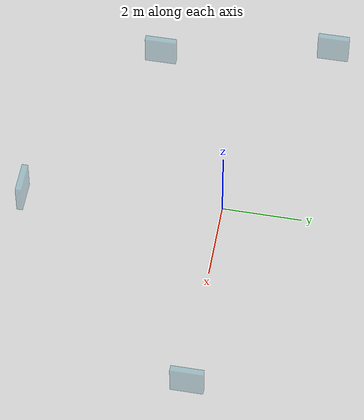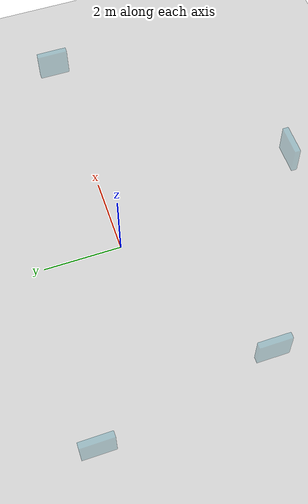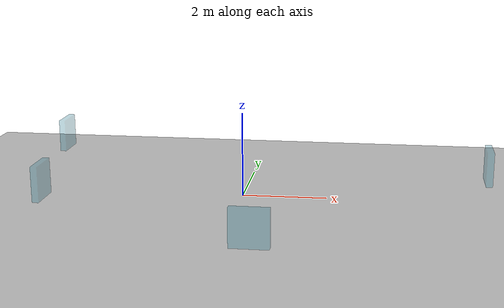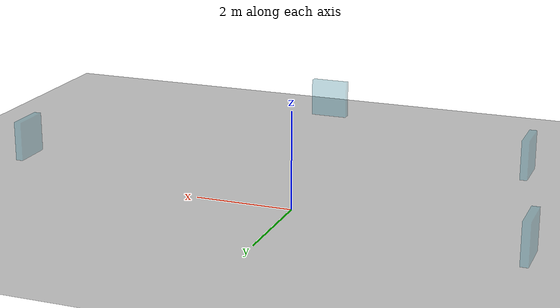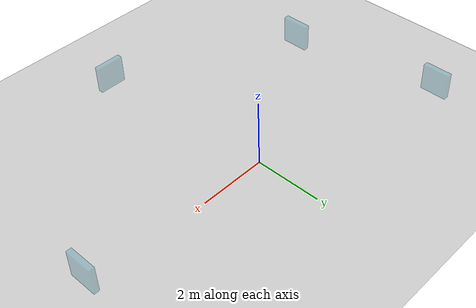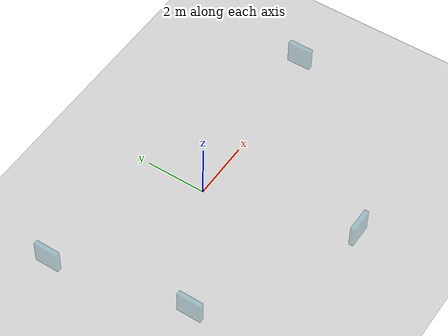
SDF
<sdf version="1.6">
 <world name="default">
  <light name="sun" type="directional">
   <pose>0 0 10 0 -0 0</pose>
   <diffuse>0.8 0.8 0.8 1</diffuse>
   <specular>0.1 0.1 0.1 1</specular>
   <attenuation>
    <range>1000</range>
    <constant>0.9</constant>
    <linear>0.01</linear>
    <quadratic>0.001</quadratic>
   </attenuation>
   <direction>-0.5 0.5 -1</direction>
  </light>
  <model name="ground_plane">
   <static>1</static>
   <link name="link">
    <collision name="collision">
     <geometry><plane><normal>0 0 1</normal><size>100 100</size></plane></geometry>
     <surface><friction><ode><mu>100</mu><mu2>50</mu2></ode></friction></surface>
    </collision>
    <visual name="visual">
     <cast_shadows>0</cast_shadows>
     <geometry><plane><normal>0 0 1</normal><size>100 100</size></plane></geometry>
     <material>
      <script><uri>file://media/materials/scripts/gazebo.material</uri><name>Gazebo/Grey</name></script>
     </material>
    </visual>
   </link>
  </model>
  <gravity>0 0 -9.8</gravity>
  <magnetic_field>6e-06 2.3e-05 -4.2e-05</magnetic_field>
  <atmosphere type="adiabatic"/>
  <physics name="default_physics" default="0" type="ode">
   <max_step_size>0.001</max_step_size>
   <real_time_factor>1</real_time_factor>
   <real_time_update_rate>1000</real_time_update_rate>
  </physics>
  <scene><ambient>0.4 0.4 0.4 1</ambient><background>0.7 0.7 0.7 1</background><shadows>1</shadows></scene>
  <spherical_coordinates>
   <surface_model>EARTH_WGS84</surface_model>
   <latitude_deg>0</latitude_deg>
   <longitude_deg>0</longitude_deg>
   <elevation>0</elevation>
   <heading_deg>0</heading_deg>
  </spherical_coordinates>
  <model name="window">
   <link name="link_2">
    <visual name="visual">
     <pose>0 0 0.9 0 -0 0</pose>
     <geometry><box><size>0.8 0.15 0.8</size></box></geometry>
     <material>
      <lighting>1</lighting>
      <ambient>0.1 0.5 0.6 1</ambient>
      <diffuse>0.1 0.5 0.6 1</diffuse>
      <specular>0.01 0.01 0.01 1</specular>
      <emissive>0 0 0 1</emissive>
     </material>
     <transparency>0.7</transparency>
    </visual>
    <collision name="collision">
     <pose>0 0 0.9 0 -0 0</pose>
     <geometry><box><size>0.8 0.15 0.8</size></box></geometry>
    </collision>
   </link>
   <static>1</static>
   <pose>-4.98923 2.04606 0 0 -0 1.5706</pose>
  </model>
  <model name="window_0">
   <link name="link_2">
    <visual name="visual">
     <pose>0 0 0.9 0 -0 0</pose>
     <geometry><box><size>0.8 0.15 0.8</size></box></geometry>
     <material>
      <lighting>1</lighting>
      <ambient>0.1 0.5 0.6 1</ambient>
      <diffuse>0.1 0.5 0.6 1</diffuse>
      <specular>0.01 0.01 0.01 1</specular>
      <emissive>0 0 0 1</emissive>
     </material>
     <transparency>0.7</transparency>
    </visual>
    <collision name="collision">
     <pose>0 0 0.9 0 -0 0</pose>
     <geometry><box><size>0.8 0.15 0.8</size></box></geometry>
    </collision>
   </link>
   <static>1</static>
   <pose>-4.12726 -2.32854 0 0 -0 1.57</pose>
  </model>
  <model name="window_1">
   <link name="link_2">
    <visual name="visual">
     <pose>0 0 0.9 0 -0 0</pose>
     <geometry><box><size>0.8 0.15 0.8</size></box></geometry>
     <material>
      <lighting>1</lighting>
      <ambient>0.1 0.5 0.6 1</ambient>
      <diffuse>0.1 0.5 0.6 1</diffuse>
      <specular>0.01 0.01 0.01 1</specular>
      <emissive>0 0 0 1</emissive>
     </material>
     <transparency>0.7</transparency>
    </visual>
    <collision name="collision">
     <pose>0 0 0.9 0 -0 0</pose>
     <geometry><box><size>0.8 0.15 0.8</size></box></geometry>
    </collision>
   </link>
   <static>1</static>
   <pose>0.875059 -4.88342 0 0 -0 0</pose>
  </model>
  <model name="window_2">
   <link name="link_2">
    <visual name="visual">
     <pose>0 0 0.9 0 -0 0</pose>
     <geometry><box><size>0.8 0.15 0.8</size></box></geometry>
     <material>
      <lighting>1</lighting>
      <ambient>0.1 0.5 0.6 1</ambient>
      <diffuse>0.1 0.5 0.6 1</diffuse>
      <specular>0.01 0.01 0.01 1</specular>
      <emissive>0 0 0 1</emissive>
     </material>
     <transparency>0.7</transparency>
    </visual>
    <collision name="collision">
     <pose>0 0 0.9 0 -0 0</pose>
     <geometry><box><size>0.8 0.15 0.8</size></box></geometry>
    </collision>
   </link>
   <static>1</static>
   <pose>5.73592 0.126978 0 0 -0 1.57</pose>
  </model>
  <model name="Floor">
   <pose>-0.862718 -0.025461 0 0 -0 0</pose>
   <scale>1 1 1</scale>
   <link name="main">
    <pose>-0.067718 0.024539 0.01 0 -0 0</pose>
    <velocity>0 0 0 0 -0 0</velocity>
    <acceleration>0 0 0 0 -0 0</acceleration>
    <wrench>0 0 0 0 -0 0</wrench>
   </link>
  </model>
  <model name="door_3d">
   <pose>-0.006583 4.95489 0 0 -0 0</pose>
   <scale>1 1 1</scale>
   <link name="link_1">
    <pose>-0.006583 4.95489 0 0 -0 0</pose>
    <velocity>0 0 0 0 -0 0</velocity>
    <acceleration>0 0 0 0 -0 0</acceleration>
    <wrench>0 0 0 0 -0 0</wrench>
   </link>
   <link name="link_2">
    <pose>-0.006583 4.95489 0 0 -0 0</pose>
    <velocity>0 0 0 0 -0 0</velocity>
    <acceleration>0 0 0 0 -0 0</acceleration>
    <wrench>0 0 0 0 -0 0</wrench>
   </link>
  </model>
  <model name="office_small">
   <pose>-0.066055 0.017641 0 0 -0 0</pose>
   <scale>1 1 1</scale>
   <link name="Wall_2">
    <pose>-0.066055 4.94264 0 0 -0 0</pose>
    <velocity>0 0 0 0 -0 0</velocity>
    <acceleration>0 0 0 0 -0 0</acceleration>
    <wrench>0 0 0 0 -0 0</wrench>
   </link>
   <link name="Wall_3">
    <pose>4.85895 0.017641 0 0 0 -1.5708</pose>
    <velocity>0 0 0 0 -0 0</velocity>
    <acceleration>0 0 0 0 -0 0</acceleration>
    <wrench>0 0 0 0 -0 0</wrench>
   </link>
   <link name="Wall_4">
    <pose>-0.066055 -4.90736 0 0 -0 3.14159</pose>
    <velocity>0 0 0 0 -0 0</velocity>
    <acceleration>0 0 0 0 -0 0</acceleration>
    <wrench>0 0 0 0 -0 0</wrench>
   </link>
   <link name="Wall_5">
    <pose>-4.99106 0.017641 0 0 -0 1.5708</pose>
    <velocity>0 0 0 0 -0 0</velocity>
    <acceleration>0 0 0 0 -0 0</acceleration>
    <wrench>0 0 0 0 -0 0</wrench>
   </link>
  </model>
 </world>
</sdf>
